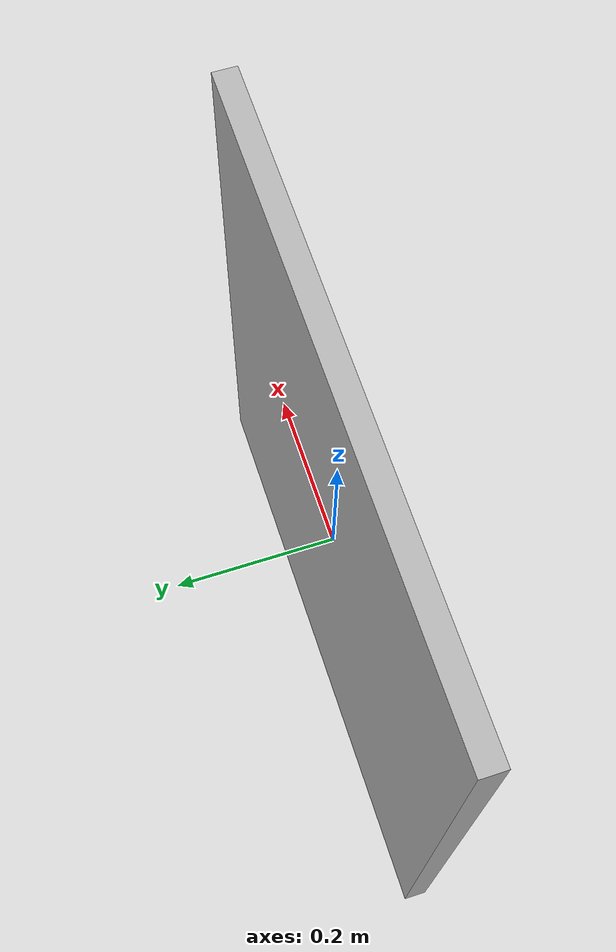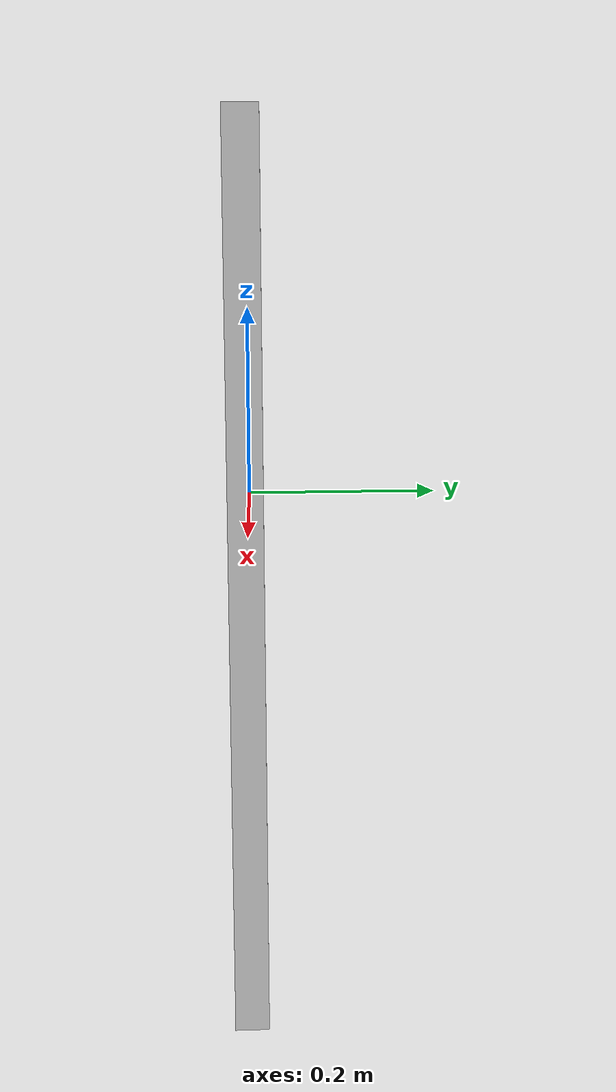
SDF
<?xml version="1.0" ?>
<sdf version="1.6">
  <model name="qr_bookshelf_right">
    <static>true</static>

    <link name="qr_board_link">
      <pose>0 0 0 0 0 0</pose>

      <collision name="qr_board_collision">
        <geometry>
          <box>
            <size>0.8 0.03 0.8</size>
          </box>
        </geometry>
      </collision>

      <visual name="qr_board_visual">
        <geometry>
          <box>
            <size>0.8 0.03 0.8</size>
          </box>
        </geometry>
        <material>
          <script>
            <uri>model://qr_bookshelf_right/materials/scripts</uri>
            <uri>model://qr_bookshelf_right/materials/textures</uri>
            <name>QR/BookshelfRight</name>
          </script>
        </material>
      </visual>
    </link>
  </model>
</sdf>
